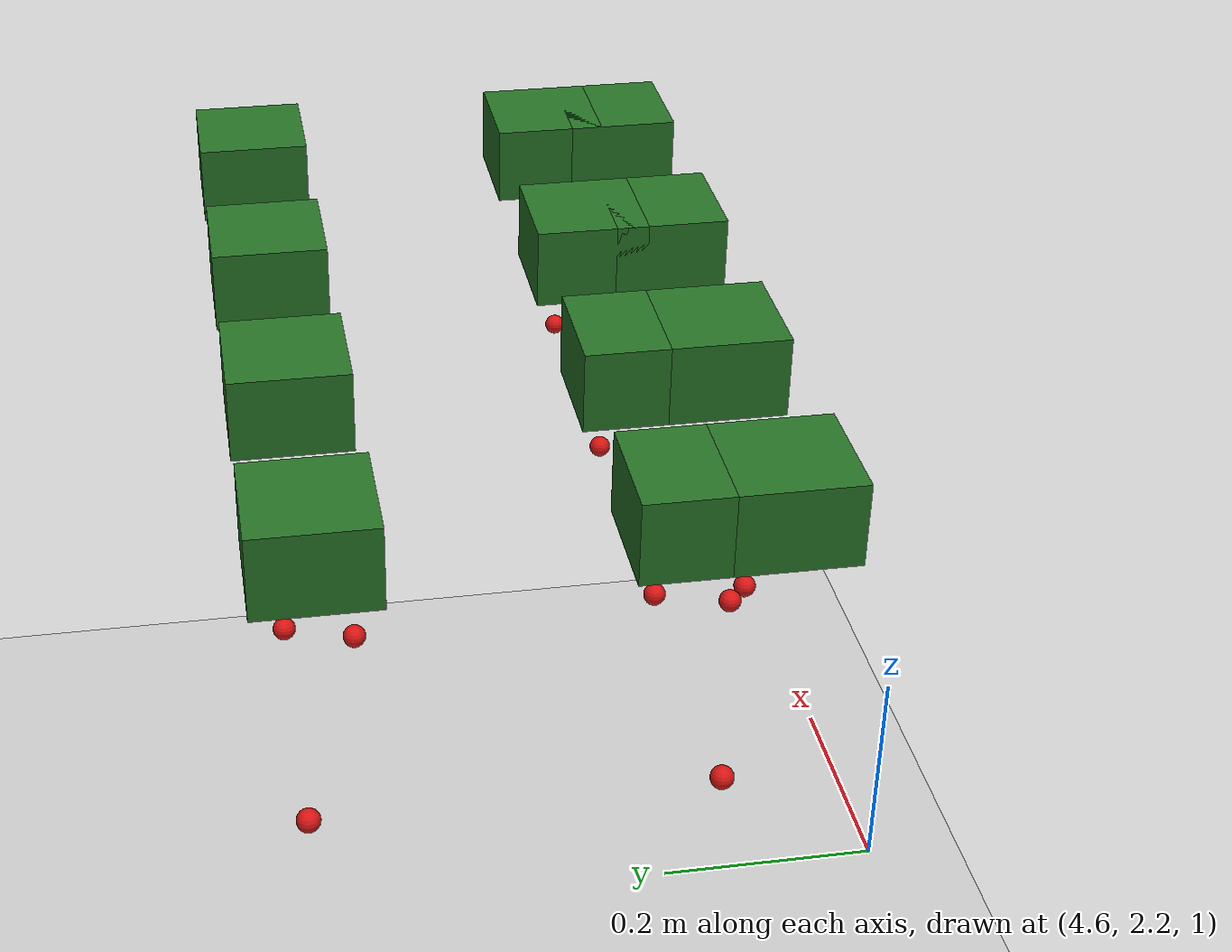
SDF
<sdf version="1.7">
 <world name="irish_polytunnel">
  <include><uri>model://sun</uri></include>
  <include><uri>model://ground_plane</uri></include>
  <model name="row4_L_plant16_foliage">
   <static>true</static>
   <pose>4.950 2.200 1.180 0 0 0</pose>
   <link name="link">
    <visual name="visual">
     <geometry><box><size>0.14 0.14 0.10</size></box></geometry>
     <material><ambient>0.10 0.35 0.10 1</ambient><diffuse>0.15 0.45 0.15 1</diffuse></material>
    </visual>
   </link>
  </model>
  <model name="row4_L_plant16_berry_1">
   <static>true</static>
   <pose>4.970 2.230 1.050 0 0 0</pose>
   <link name="link">
    <visual name="visual">
     <geometry><sphere><radius>0.012</radius></sphere></geometry>
     <material><ambient>0.75 0.05 0.05 1</ambient><diffuse>0.85 0.08 0.08 1</diffuse></material>
    </visual>
   </link>
  </model>
  <model name="row4_L_plant17_foliage">
   <static>true</static>
   <pose>5.250 2.200 1.180 0 0 0</pose>
   <link name="link">
    <visual name="visual">
     <geometry><box><size>0.14 0.14 0.10</size></box></geometry>
     <material><ambient>0.10 0.35 0.10 1</ambient><diffuse>0.15 0.45 0.15 1</diffuse></material>
    </visual>
   </link>
  </model>
  <model name="row4_L_plant17_berry_1">
   <static>true</static>
   <pose>5.270 2.230 1.050 0 0 0</pose>
   <link name="link">
    <visual name="visual">
     <geometry><sphere><radius>0.012</radius></sphere></geometry>
     <material><ambient>0.75 0.05 0.05 1</ambient><diffuse>0.85 0.08 0.08 1</diffuse></material>
    </visual>
   </link>
  </model>
  <model name="row4_L_plant18_foliage">
   <static>true</static>
   <pose>5.550 2.200 1.180 0 0 0</pose>
   <link name="link">
    <visual name="visual">
     <geometry><box><size>0.14 0.14 0.10</size></box></geometry>
     <material><ambient>0.10 0.35 0.10 1</ambient><diffuse>0.15 0.45 0.15 1</diffuse></material>
    </visual>
   </link>
  </model>
  <model name="row4_L_plant18_berry_0">
   <static>true</static>
   <pose>5.520 2.160 1.070 0 0 0</pose>
   <link name="link">
    <visual name="visual">
     <geometry><sphere><radius>0.012</radius></sphere></geometry>
     <material><ambient>0.75 0.05 0.05 1</ambient><diffuse>0.85 0.08 0.08 1</diffuse></material>
    </visual>
   </link>
  </model>
  <model name="row4_L_plant18_berry_1">
   <static>true</static>
   <pose>5.570 2.230 1.050 0 0 0</pose>
   <link name="link">
    <visual name="visual">
     <geometry><sphere><radius>0.012</radius></sphere></geometry>
     <material><ambient>0.75 0.05 0.05 1</ambient><diffuse>0.85 0.08 0.08 1</diffuse></material>
    </visual>
   </link>
  </model>
  <model name="row4_L_plant19_foliage">
   <static>true</static>
   <pose>5.850 2.200 1.180 0 0 0</pose>
   <link name="link">
    <visual name="visual">
     <geometry><box><size>0.14 0.14 0.10</size></box></geometry>
     <material><ambient>0.10 0.35 0.10 1</ambient><diffuse>0.15 0.45 0.15 1</diffuse></material>
    </visual>
   </link>
  </model>
  <model name="row4_L_plant19_berry_0">
   <static>true</static>
   <pose>5.820 2.160 1.070 0 0 0</pose>
   <link name="link">
    <visual name="visual">
     <geometry><sphere><radius>0.012</radius></sphere></geometry>
     <material><ambient>0.75 0.05 0.05 1</ambient><diffuse>0.85 0.08 0.08 1</diffuse></material>
    </visual>
   </link>
  </model>
  <model name="row5_L_plant15_berry_1">
   <static>true</static>
   <pose>4.670 2.730 1.050 0 0 0</pose>
   <link name="link">
    <visual name="visual">
     <geometry><sphere><radius>0.012</radius></sphere></geometry>
     <material><ambient>0.75 0.05 0.05 1</ambient><diffuse>0.85 0.08 0.08 1</diffuse></material>
    </visual>
   </link>
  </model>
  <model name="row5_L_plant16_foliage">
   <static>true</static>
   <pose>4.950 2.700 1.180 0 0 0</pose>
   <link name="link">
    <visual name="visual">
     <geometry><box><size>0.14 0.14 0.10</size></box></geometry>
     <material><ambient>0.10 0.35 0.10 1</ambient><diffuse>0.15 0.45 0.15 1</diffuse></material>
    </visual>
   </link>
  </model>
  <model name="row5_L_plant16_berry_0">
   <static>true</static>
   <pose>4.920 2.660 1.070 0 0 0</pose>
   <link name="link">
    <visual name="visual">
     <geometry><sphere><radius>0.012</radius></sphere></geometry>
     <material><ambient>0.75 0.05 0.05 1</ambient><diffuse>0.85 0.08 0.08 1</diffuse></material>
    </visual>
   </link>
  </model>
  <model name="row5_L_plant16_berry_1">
   <static>true</static>
   <pose>4.970 2.730 1.050 0 0 0</pose>
   <link name="link">
    <visual name="visual">
     <geometry><sphere><radius>0.012</radius></sphere></geometry>
     <material><ambient>0.75 0.05 0.05 1</ambient><diffuse>0.85 0.08 0.08 1</diffuse></material>
    </visual>
   </link>
  </model>
  <model name="row5_L_plant17_foliage">
   <static>true</static>
   <pose>5.250 2.700 1.180 0 0 0</pose>
   <link name="link">
    <visual name="visual">
     <geometry><box><size>0.14 0.14 0.10</size></box></geometry>
     <material><ambient>0.10 0.35 0.10 1</ambient><diffuse>0.15 0.45 0.15 1</diffuse></material>
    </visual>
   </link>
  </model>
  <model name="row5_L_plant17_berry_0">
   <static>true</static>
   <pose>5.220 2.660 1.070 0 0 0</pose>
   <link name="link">
    <visual name="visual">
     <geometry><sphere><radius>0.012</radius></sphere></geometry>
     <material><ambient>0.75 0.05 0.05 1</ambient><diffuse>0.85 0.08 0.08 1</diffuse></material>
    </visual>
   </link>
  </model>
  <model name="row5_L_plant17_berry_1">
   <static>true</static>
   <pose>5.270 2.730 1.050 0 0 0</pose>
   <link name="link">
    <visual name="visual">
     <geometry><sphere><radius>0.012</radius></sphere></geometry>
     <material><ambient>0.75 0.05 0.05 1</ambient><diffuse>0.85 0.08 0.08 1</diffuse></material>
    </visual>
   </link>
  </model>
  <model name="row5_L_plant18_foliage">
   <static>true</static>
   <pose>5.550 2.700 1.180 0 0 0</pose>
   <link name="link">
    <visual name="visual">
     <geometry><box><size>0.14 0.14 0.10</size></box></geometry>
     <material><ambient>0.10 0.35 0.10 1</ambient><diffuse>0.15 0.45 0.15 1</diffuse></material>
    </visual>
   </link>
  </model>
  <model name="row5_L_plant18_berry_0">
   <static>true</static>
   <pose>5.520 2.660 1.070 0 0 0</pose>
   <link name="link">
    <visual name="visual">
     <geometry><sphere><radius>0.012</radius></sphere></geometry>
     <material><ambient>0.75 0.05 0.05 1</ambient><diffuse>0.85 0.08 0.08 1</diffuse></material>
    </visual>
   </link>
  </model>
  <model name="row5_L_plant18_berry_1">
   <static>true</static>
   <pose>5.570 2.730 1.050 0 0 0</pose>
   <link name="link">
    <visual name="visual">
     <geometry><sphere><radius>0.012</radius></sphere></geometry>
     <material><ambient>0.75 0.05 0.05 1</ambient><diffuse>0.85 0.08 0.08 1</diffuse></material>
    </visual>
   </link>
  </model>
  <model name="row5_L_plant19_foliage">
   <static>true</static>
   <pose>5.850 2.700 1.180 0 0 0</pose>
   <link name="link">
    <visual name="visual">
     <geometry><box><size>0.14 0.14 0.10</size></box></geometry>
     <material><ambient>0.10 0.35 0.10 1</ambient><diffuse>0.15 0.45 0.15 1</diffuse></material>
    </visual>
   </link>
  </model>
  <model name="row5_L_plant19_berry_0">
   <static>true</static>
   <pose>5.820 2.660 1.070 0 0 0</pose>
   <link name="link">
    <visual name="visual">
     <geometry><sphere><radius>0.012</radius></sphere></geometry>
     <material><ambient>0.75 0.05 0.05 1</ambient><diffuse>0.85 0.08 0.08 1</diffuse></material>
    </visual>
   </link>
  </model>
  <model name="row5_R_plant15_berry_1">
   <static>true</static>
   <pose>4.670 2.330 1.050 0 0 0</pose>
   <link name="link">
    <visual name="visual">
     <geometry><sphere><radius>0.012</radius></sphere></geometry>
     <material><ambient>0.75 0.05 0.05 1</ambient><diffuse>0.85 0.08 0.08 1</diffuse></material>
    </visual>
   </link>
  </model>
  <model name="row5_R_plant16_foliage">
   <static>true</static>
   <pose>4.950 2.300 1.180 0 0 0</pose>
   <link name="link">
    <visual name="visual">
     <geometry><box><size>0.14 0.14 0.10</size></box></geometry>
     <material><ambient>0.10 0.35 0.10 1</ambient><diffuse>0.15 0.45 0.15 1</diffuse></material>
    </visual>
   </link>
  </model>
  <model name="row5_R_plant16_berry_0">
   <static>true</static>
   <pose>4.920 2.260 1.070 0 0 0</pose>
   <link name="link">
    <visual name="visual">
     <geometry><sphere><radius>0.012</radius></sphere></geometry>
     <material><ambient>0.75 0.05 0.05 1</ambient><diffuse>0.85 0.08 0.08 1</diffuse></material>
    </visual>
   </link>
  </model>
  <model name="row5_R_plant16_berry_1">
   <static>true</static>
   <pose>4.970 2.330 1.050 0 0 0</pose>
   <link name="link">
    <visual name="visual">
     <geometry><sphere><radius>0.012</radius></sphere></geometry>
     <material><ambient>0.75 0.05 0.05 1</ambient><diffuse>0.85 0.08 0.08 1</diffuse></material>
    </visual>
   </link>
  </model>
  <model name="row5_R_plant17_foliage">
   <static>true</static>
   <pose>5.250 2.300 1.180 0 0 0</pose>
   <link name="link">
    <visual name="visual">
     <geometry><box><size>0.14 0.14 0.10</size></box></geometry>
     <material><ambient>0.10 0.35 0.10 1</ambient><diffuse>0.15 0.45 0.15 1</diffuse></material>
    </visual>
   </link>
  </model>
  <model name="row5_R_plant17_berry_0">
   <static>true</static>
   <pose>5.220 2.260 1.070 0 0 0</pose>
   <link name="link">
    <visual name="visual">
     <geometry><sphere><radius>0.012</radius></sphere></geometry>
     <material><ambient>0.75 0.05 0.05 1</ambient><diffuse>0.85 0.08 0.08 1</diffuse></material>
    </visual>
   </link>
  </model>
  <model name="row5_R_plant17_berry_1">
   <static>true</static>
   <pose>5.270 2.330 1.050 0 0 0</pose>
   <link name="link">
    <visual name="visual">
     <geometry><sphere><radius>0.012</radius></sphere></geometry>
     <material><ambient>0.75 0.05 0.05 1</ambient><diffuse>0.85 0.08 0.08 1</diffuse></material>
    </visual>
   </link>
  </model>
  <model name="row5_R_plant18_foliage">
   <static>true</static>
   <pose>5.550 2.300 1.180 0 0 0</pose>
   <link name="link">
    <visual name="visual">
     <geometry><box><size>0.14 0.14 0.10</size></box></geometry>
     <material><ambient>0.10 0.35 0.10 1</ambient><diffuse>0.15 0.45 0.15 1</diffuse></material>
    </visual>
   </link>
  </model>
  <model name="row5_R_plant18_berry_0">
   <static>true</static>
   <pose>5.520 2.260 1.070 0 0 0</pose>
   <link name="link">
    <visual name="visual">
     <geometry><sphere><radius>0.012</radius></sphere></geometry>
     <material><ambient>0.75 0.05 0.05 1</ambient><diffuse>0.85 0.08 0.08 1</diffuse></material>
    </visual>
   </link>
  </model>
  <model name="row5_R_plant18_berry_1">
   <static>true</static>
   <pose>5.570 2.330 1.050 0 0 0</pose>
   <link name="link">
    <visual name="visual">
     <geometry><sphere><radius>0.012</radius></sphere></geometry>
     <material><ambient>0.75 0.05 0.05 1</ambient><diffuse>0.85 0.08 0.08 1</diffuse></material>
    </visual>
   </link>
  </model>
  <model name="row5_R_plant19_foliage">
   <static>true</static>
   <pose>5.850 2.300 1.180 0 0 0</pose>
   <link name="link">
    <visual name="visual">
     <geometry><box><size>0.14 0.14 0.10</size></box></geometry>
     <material><ambient>0.10 0.35 0.10 1</ambient><diffuse>0.15 0.45 0.15 1</diffuse></material>
    </visual>
   </link>
  </model>
  <model name="row5_R_plant19_berry_0">
   <static>true</static>
   <pose>5.820 2.260 1.070 0 0 0</pose>
   <link name="link">
    <visual name="visual">
     <geometry><sphere><radius>0.012</radius></sphere></geometry>
     <material><ambient>0.75 0.05 0.05 1</ambient><diffuse>0.85 0.08 0.08 1</diffuse></material>
    </visual>
   </link>
  </model>
 </world>
</sdf>
